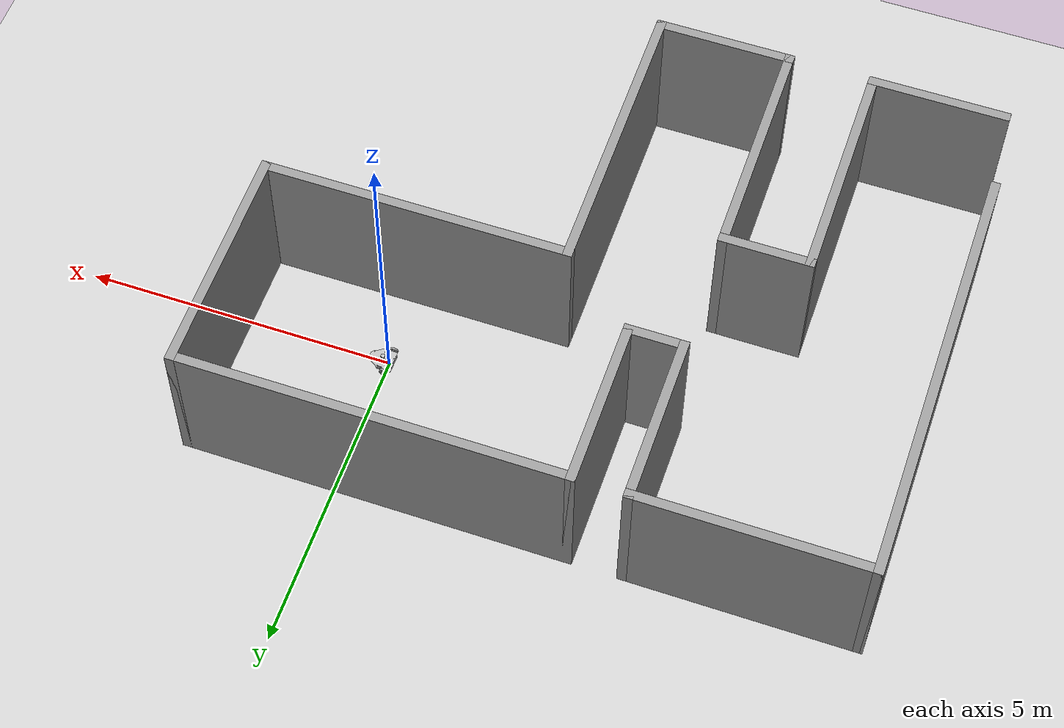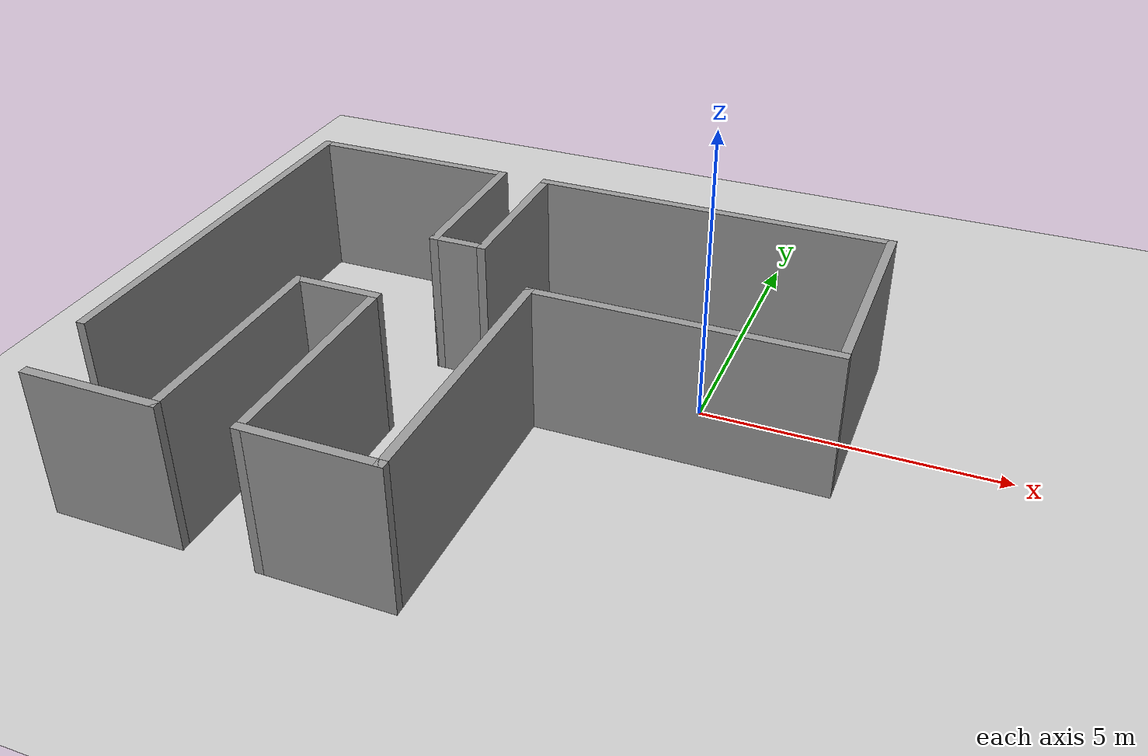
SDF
<sdf version="1.7">
 <world name="default">
  <light name="sun" type="directional">
   <pose>0 0 10 0 -0 0</pose>
   <diffuse>0.8 0.8 0.8 1</diffuse>
   <specular>0.2 0.2 0.2 1</specular>
   <attenuation>
    <range>1000</range>
    <constant>0.9</constant>
    <linear>0.01</linear>
    <quadratic>0.001</quadratic>
   </attenuation>
   <direction>-0.5 0.1 -0.9</direction>
   <spot><inner_angle>0</inner_angle><outer_angle>0</outer_angle><falloff>0</falloff></spot>
  </light>
  <model name="ground_plane">
   <static>1</static>
   <link name="link">
    <collision name="collision">
     <geometry><plane><normal>0 0 1</normal><size>100 100</size></plane></geometry>
     <surface>
      <contact><collide_bitmask>65535</collide_bitmask></contact>
      <friction><ode><mu>100</mu><mu2>50</mu2></ode></friction>
     </surface>
    </collision>
    <visual name="visual">
     <cast_shadows>0</cast_shadows>
     <geometry><plane><normal>0 0 1</normal><size>100 100</size></plane></geometry>
     <material>
      <script><uri>file://media/materials/scripts/gazebo.material</uri><name>Gazebo/Grey</name></script>
     </material>
    </visual>
   </link>
  </model>
  <gravity>0 0 -9.8</gravity>
  <magnetic_field>6e-06 2.3e-05 -4.2e-05</magnetic_field>
  <atmosphere type="adiabatic"/>
  <physics type="ode">
   <max_step_size>0.001</max_step_size>
   <real_time_factor>1</real_time_factor>
   <real_time_update_rate>1000</real_time_update_rate>
  </physics>
  <scene><ambient>0.4 0.4 0.4 1</ambient><background>0.7 0.7 0.7 1</background><shadows>1</shadows></scene>
  <spherical_coordinates>
   <surface_model>EARTH_WGS84</surface_model>
   <latitude_deg>0</latitude_deg>
   <longitude_deg>0</longitude_deg>
   <elevation>0</elevation>
   <heading_deg>0</heading_deg>
  </spherical_coordinates>
  <model name="robot">
   <link name="footprint">
    <inertial>
     <pose>-0.005167 -0.000503 0.093988 0 -0 0</pose>
     <mass>0.746894</mass>
     <inertia>
      <ixx>0.00661562</ixx>
      <ixy>-5.89426e-07</ixy>
      <ixz>-0.00028569</ixz>
      <iyy>0.00805325</iyy>
      <iyz>-1.4533e-06</iyz>
      <izz>0.0115705</izz>
     </inertia>
    </inertial>
    <collision name="footprint_fixed_joint_lump__base_link_collision">
     <pose>0 0 0.04 0 -0 0</pose>
     <geometry>
      <mesh>
       <scale>1 1 1</scale>
       <uri>/home/khiem/Desktop/khiem/src/kbot/mobile_robot_v2/meshes/base_link.STL</uri>
      </mesh>
     </geometry>
    </collision>
    <collision name="footprint_fixed_joint_lump__rp_lidar_collision_1">
     <pose>0.011811 1111 0.1922 0 -1.1238 0</pose>
     <geometry>
      <mesh>
       <scale>1 1 1</scale>
       <uri>/home/khiem/Desktop/khiem/src/kbot/mobile_robot_v2/meshes/sensors/hokuyo.dae</uri>
      </mesh>
     </geometry>
    </collision>
    <visual name="footprint_fixed_joint_lump__base_link_visual">
     <pose>0 0 0.04 0 -0 0</pose>
     <geometry>
      <mesh>
       <scale>1 1 1</scale>
       <uri>/home/khiem/Desktop/khiem/src/kbot/mobile_robot_v2/meshes/base_link.STL</uri>
      </mesh>
     </geometry>
    </visual>
    <visual name="footprint_fixed_joint_lump__rp_lidar_visual_1">
     <pose>0.011811 0 0.1922 0 -0 0</pose>
     <geometry>
      <mesh>
       <scale>1 1 1</scale>
       <uri>/home/khiem/Desktop/khiem/src/kbot/mobile_robot_v2/meshes/sensors/rp_lidar.STL</uri>
      </mesh>
     </geometry>
    </visual>
    <sensor name="head_hokuyo_sensor" type="ray">
     <visualize>1</visualize>
     <update_rate>40</update_rate>
     <ray>
      <scan>
       <horizontal>
        <samples>640</samples>
        <resolution>1</resolution>
        <min_angle>-3.14159</min_angle>
        <max_angle>3.14159</max_angle>
       </horizontal>
       <vertical><samples>1</samples><min_angle>0</min_angle><max_angle>0</max_angle></vertical>
      </scan>
      <range><min>0.3</min><max>12</max><resolution>0.01</resolution></range>
      <noise><type>gaussian</type><mean>0</mean><stddev>0.01</stddev></noise>
     </ray>
     <plugin name="gazebo_ros_head_hokuyo_controller" filename="libgazebo_ros_laser.so">
      <always_on>1</always_on>
      <update_rate>30</update_rate>
      <visualize>1</visualize>
      <topicName>khiem/i_robotlab_/scan</topicName>
      <frameName>rp_lidar</frameName>
      <robotNamespace>/</robotNamespace>
     </plugin>
     <pose>0.011811 0 0.1922 0 -0 0</pose>
    </sensor>
   </link>
   <joint name="front_caster_rotation_joint" type="revolute">
    <pose relative_to="footprint">0.184 0 0.0384 0 -0 0</pose>
    <parent>footprint</parent>
    <child>front_caster_rotation</child>
    <axis>
     <xyz>0 0 1</xyz>
     <limit><lower>-1e+16</lower><upper>1e+16</upper></limit>
     <dynamics><spring_reference>0</spring_reference><spring_stiffness>0</spring_stiffness></dynamics>
    </axis>
    <physics><ode><limit><cfm>0</cfm><erp>0.2</erp></limit></ode></physics>
   </joint>
   <link name="front_caster_rotation">
    <pose relative_to="front_caster_rotation_joint">0 0 0 0 -0 0</pose>
    <inertial>
     <pose>0.002751 -3.8e-05 -0.01069 0 -0 0</pose>
     <mass>0.00163932</mass>
     <inertia>
      <ixx>1.68947e-07</ixx>
      <ixy>-2.13476e-10</ixy>
      <ixz>3.49757e-08</ixz>
      <iyy>1.53524e-07</iyy>
      <iyz>-4.8368e-10</iyz>
      <izz>1.81641e-07</izz>
     </inertia>
    </inertial>
    <collision name="front_caster_rotation_collision">
     <geometry>
      <mesh>
       <scale>1 1 1</scale>
       <uri>/home/khiem/Desktop/khiem/src/kbot/mobile_robot_v2/meshes/front_caster_rotation.STL</uri>
      </mesh>
     </geometry>
    </collision>
    <visual name="front_caster_rotation_visual">
     <geometry>
      <mesh>
       <scale>1 1 1</scale>
       <uri>/home/khiem/Desktop/khiem/src/kbot/mobile_robot_v2/meshes/front_caster_rotation.STL</uri>
      </mesh>
     </geometry>
    </visual>
   </link>
   <joint name="front_caster_wheel_joint" type="revolute">
    <pose relative_to="front_caster_rotation">0.010096 -0.006861 -0.0244 -1.58459 -1.57079 3.14159</pose>
    <parent>front_caster_rotation</parent>
    <child>front_caster_wheel</child>
    <axis>
     <xyz>0 0 1</xyz>
     <limit><lower>-1e+16</lower><upper>1e+16</upper></limit>
     <dynamics><spring_reference>0</spring_reference><spring_stiffness>0</spring_stiffness></dynamics>
    </axis>
    <physics><ode><limit><cfm>0</cfm><erp>0.2</erp></limit></ode></physics>
   </joint>
   <link name="front_caster_wheel">
    <pose relative_to="front_caster_wheel_joint">0 0 0 0 -0 0</pose>
    <inertial>
     <pose>0 0 -0.007 0 -0 0</pose>
     <mass>0.0113625</mass>
     <inertia>
      <ixx>9.06332e-07</ixx>
      <ixy>6.67864e-23</ixy>
      <ixz>4.09392e-22</ixz>
      <iyy>9.06332e-07</iyy>
      <iyz>8.40416e-22</iyz>
      <izz>1.43202e-06</izz>
     </inertia>
    </inertial>
    <collision name="front_caster_wheel_collision">
     <geometry>
      <mesh>
       <scale>1 1 1</scale>
       <uri>/home/khiem/Desktop/khiem/src/kbot/mobile_robot_v2/meshes/front_caster_wheel.STL</uri>
      </mesh>
     </geometry>
    </collision>
    <visual name="front_caster_wheel_visual">
     <geometry>
      <mesh>
       <scale>1 1 1</scale>
       <uri>/home/khiem/Desktop/khiem/src/kbot/mobile_robot_v2/meshes/front_caster_wheel.STL</uri>
      </mesh>
     </geometry>
    </visual>
   </link>
   <joint name="rear_left_wheel_joint" type="revolute">
    <pose relative_to="footprint">-0.081026 0.22731 0.0735 0 -0 0</pose>
    <parent>footprint</parent>
    <child>rear_left_wheel</child>
    <axis>
     <xyz>0 1 0</xyz>
     <limit><lower>-1e+16</lower><upper>1e+16</upper></limit>
     <dynamics><spring_reference>0</spring_reference><spring_stiffness>0</spring_stiffness></dynamics>
    </axis>
    <physics><ode><limit><cfm>0</cfm><erp>0.2</erp></limit></ode></physics>
   </joint>
   <link name="rear_left_wheel">
    <pose relative_to="rear_left_wheel_joint">0 0 0 0 -0 0</pose>
    <inertial>
     <pose>0 -0.016398 0 0 -0 0</pose>
     <mass>0.335247</mass>
     <inertia>
      <ixx>0.000556427</ixx>
      <ixy>-9.96063e-19</ixy>
      <ixz>-1.32872e-20</ixz>
      <iyy>0.00106372</iyy>
      <iyz>-8.85953e-19</iyz>
      <izz>0.000556427</izz>
     </inertia>
    </inertial>
    <collision name="rear_left_wheel_collision">
     <geometry>
      <mesh>
       <scale>1 1 1</scale>
       <uri>/home/khiem/Desktop/khiem/src/kbot/mobile_robot_v2/meshes/rear_left_wheel.STL</uri>
      </mesh>
     </geometry>
    </collision>
    <visual name="rear_left_wheel_visual">
     <geometry>
      <mesh>
       <scale>1 1 1</scale>
       <uri>/home/khiem/Desktop/khiem/src/kbot/mobile_robot_v2/meshes/rear_left_wheel.STL</uri>
      </mesh>
     </geometry>
    </visual>
   </link>
   <joint name="rear_right_wheel_joint" type="revolute">
    <pose relative_to="footprint">-0.081026 -0.22709 0.0735 0 -0 0</pose>
    <parent>footprint</parent>
    <child>rear_right_wheel</child>
    <axis>
     <xyz>0 1 0</xyz>
     <limit><lower>-1e+16</lower><upper>1e+16</upper></limit>
     <dynamics><spring_reference>0</spring_reference><spring_stiffness>0</spring_stiffness></dynamics>
    </axis>
    <physics><ode><limit><cfm>0</cfm><erp>0.2</erp></limit></ode></physics>
   </joint>
   <link name="rear_right_wheel">
    <pose relative_to="rear_right_wheel_joint">0 0 0 0 -0 0</pose>
    <inertial>
     <pose>-0 0.015602 -0 0 -0 0</pose>
     <mass>0.335247</mass>
     <inertia>
      <ixx>0.000556427</ixx>
      <ixy>-9.22943e-19</ixy>
      <ixz>-2.69726e-20</ixz>
      <iyy>0.00106372</iyy>
      <iyz>-8.72914e-19</iyz>
      <izz>0.000556427</izz>
     </inertia>
    </inertial>
    <collision name="rear_right_wheel_collision">
     <geometry>
      <mesh>
       <scale>1 1 1</scale>
       <uri>/home/khiem/Desktop/khiem/src/kbot/mobile_robot_v2/meshes/rear_right_wheel.STL</uri>
      </mesh>
     </geometry>
    </collision>
    <visual name="rear_right_wheel_visual">
     <geometry>
      <mesh>
       <scale>1 1 1</scale>
       <uri>/home/khiem/Desktop/khiem/src/kbot/mobile_robot_v2/meshes/rear_right_wheel.STL</uri>
      </mesh>
     </geometry>
    </visual>
   </link>
   <plugin name="gazebo_ros_control" filename="libgazebo_ros_control.so">
    <robotNamespace>/</robotNamespace>
    <controlPeriod>0.001</controlPeriod>
    <legacyModeNS>0</legacyModeNS>
   </plugin>
   <static>0</static>
   <plugin name="diff_drive_controller" filename="libgazebo_ros_diff_drive.so">
    <legacyMode>0</legacyMode>
    <alwaysOn>1</alwaysOn>
    <updateRate>100.0</updateRate>
    <leftJoint>rear_left_wheel_joint</leftJoint>
    <rightJoint>rear_right_wheel_joint</rightJoint>
    <wheelSeparation>0.4</wheelSeparation>
    <wheelDiameter>0.2</wheelDiameter>
    <wheelTorque>10</wheelTorque>
    <publishTf>1</publishTf>
    <odometryFrame>map</odometryFrame>
    <commandTopic>/khiem/i_robotlab/cmd_vel</commandTopic>
    <odometryTopic>/khiem/i_robotlab/odom</odometryTopic>
    <robotBaseFrame>footprint</robotBaseFrame>
    <wheelAcceleration>2.8</wheelAcceleration>
    <publishWheelJointState>1</publishWheelJointState>
    <publishWheelTF>1</publishWheelTF>
    <odometrySource>world</odometrySource>
    <rosDebugLevel>Debug</rosDebugLevel>
    <robotNamespace>/</robotNamespace>
   </plugin>
   <pose>0.090892 0.003584 -0.000223 -0.000136 -0.010312 -0.021459</pose>
  </model>
  <model name="i_robotlab_room">
   <pose>-2.88761 -1.77987 0 0 -0 0</pose>
   <link name="Wall_0">
    <collision name="Wall_0_Collision">
     <geometry><box><size>7 0.15 2.5</size></box></geometry>
     <pose>0 0 1.25 0 -0 0</pose>
    </collision>
    <visual name="Wall_0_Visual">
     <pose>0 0 1.25 0 -0 0</pose>
     <geometry><box><size>7 0.15 2.5</size></box></geometry>
     <material>
      <script><uri>file://media/materials/scripts/gazebo.material</uri><name>Gazebo/Grey</name></script>
      <ambient>1 1 1 1</ambient>
     </material>
     <meta><layer>0</layer></meta>
    </visual>
    <pose>-5.275 0.675 0 0 -0 1.5708</pose>
   </link>
   <link name="Wall_1">
    <collision name="Wall_1_Collision">
     <geometry><box><size>3.75 0.15 2.5</size></box></geometry>
     <pose>0 0 1.25 0 -0 0</pose>
    </collision>
    <visual name="Wall_1_Visual">
     <pose>0 0 1.25 0 -0 0</pose>
     <geometry><box><size>3.75 0.15 2.5</size></box></geometry>
     <material>
      <script><uri>file://media/materials/scripts/gazebo.material</uri><name>Gazebo/Grey</name></script>
      <ambient>1 1 1 1</ambient>
     </material>
     <meta><layer>0</layer></meta>
    </visual>
    <pose>-3.475 4.1 0 0 -0 0</pose>
   </link>
   <link name="Wall_10">
    <collision name="Wall_10_Collision">
     <geometry><box><size>3.75 0.15 2.5</size></box></geometry>
     <pose>0 0 1.25 0 -0 0</pose>
    </collision>
    <visual name="Wall_10_Visual">
     <pose>0 0 1.25 0 -0 0</pose>
     <geometry><box><size>3.75 0.15 2.5</size></box></geometry>
     <material>
      <script><uri>file://media/materials/scripts/gazebo.material</uri><name>Gazebo/Grey</name></script>
      <ambient>1 1 1 1</ambient>
     </material>
     <meta><layer>0</layer></meta>
    </visual>
    <pose>-1.675 -2.3 0 0 -0 1.5708</pose>
   </link>
   <link name="Wall_11">
    <collision name="Wall_11_Collision">
     <geometry><box><size>1.5 0.15 2.5</size></box></geometry>
     <pose>0 0 1.25 0 -0 0</pose>
    </collision>
    <visual name="Wall_11_Visual">
     <pose>0 0 1.25 0 -0 0</pose>
     <geometry><box><size>1.5 0.15 2.5</size></box></geometry>
     <material>
      <script><uri>file://media/materials/scripts/gazebo.material</uri><name>Gazebo/Grey</name></script>
      <ambient>1 1 1 1</ambient>
     </material>
     <meta><layer>0</layer></meta>
    </visual>
    <pose>-2.35 -0.5 0 0 -0 3.14159</pose>
   </link>
   <link name="Wall_12">
    <collision name="Wall_12_Collision">
     <geometry><box><size>3.75 0.15 2.5</size></box></geometry>
     <pose>0 0 1.25 0 -0 0</pose>
    </collision>
    <visual name="Wall_12_Visual">
     <pose>0 0 1.25 0 -0 0</pose>
     <geometry><box><size>3.75 0.15 2.5</size></box></geometry>
     <material>
      <script><uri>file://media/materials/scripts/gazebo.material</uri><name>Gazebo/Grey</name></script>
      <ambient>1 1 1 1</ambient>
     </material>
     <meta><layer>0</layer></meta>
    </visual>
    <pose>-3.025 -2.3 0 0 -0 -1.5708</pose>
   </link>
   <link name="Wall_13">
    <collision name="Wall_13_Collision">
     <geometry><box><size>2.25 0.15 2.5</size></box></geometry>
     <pose>0 0 1.25 0 -0 0</pose>
    </collision>
    <visual name="Wall_13_Visual">
     <pose>0 0 1.25 0 -0 0</pose>
     <geometry><box><size>2.25 0.15 2.5</size></box></geometry>
     <material>
      <script><uri>file://media/materials/scripts/gazebo.material</uri><name>Gazebo/Grey</name></script>
      <ambient>1 1 1 1</ambient>
     </material>
     <meta><layer>0</layer></meta>
    </visual>
    <pose>-4.075 -4.1 0 0 -0 3.14159</pose>
   </link>
   <link name="Wall_2">
    <collision name="Wall_2_Collision">
     <geometry><box><size>2.75 0.15 2.5</size></box></geometry>
     <pose>0 0 1.25 0 -0 0</pose>
    </collision>
    <visual name="Wall_2_Visual">
     <pose>0 0 1.25 0 -0 0</pose>
     <geometry><box><size>2.75 0.15 2.5</size></box></geometry>
     <material>
      <script><uri>file://media/materials/scripts/gazebo.material</uri><name>Gazebo/Grey</name></script>
      <ambient>1 1 1 1</ambient>
     </material>
     <meta><layer>0</layer></meta>
    </visual>
    <pose>-1.675 2.8 0 0 -0 -1.5708</pose>
   </link>
   <link name="Wall_3">
    <collision name="Wall_3_Collision">
     <geometry><box><size>1 0.15 2.5</size></box></geometry>
     <pose>0 0 1.25 0 -0 0</pose>
    </collision>
    <visual name="Wall_3_Visual">
     <pose>0 0 1.25 0 -0 0</pose>
     <geometry><box><size>1 0.15 2.5</size></box></geometry>
     <material>
      <script><uri>file://media/materials/scripts/gazebo.material</uri><name>Gazebo/Grey</name></script>
      <ambient>1 1 1 1</ambient>
     </material>
     <meta><layer>0</layer></meta>
    </visual>
    <pose>-1.25 1.5 0 0 -0 0</pose>
   </link>
   <link name="Wall_4">
    <collision name="Wall_4_Collision">
     <geometry><box><size>2.75 0.15 2.5</size></box></geometry>
     <pose>0 0 1.25 0 -0 0</pose>
    </collision>
    <visual name="Wall_4_Visual">
     <pose>0 0 1.25 0 -0 0</pose>
     <geometry><box><size>2.75 0.15 2.5</size></box></geometry>
     <material>
      <script><uri>file://media/materials/scripts/gazebo.material</uri><name>Gazebo/Grey</name></script>
      <ambient>1 1 1 1</ambient>
     </material>
     <meta><layer>0</layer></meta>
    </visual>
    <pose>-0.825 2.8 0 0 -0 1.5708</pose>
   </link>
   <link name="Wall_5">
    <collision name="Wall_5_Collision">
     <geometry><box><size>6.25 0.15 2.5</size></box></geometry>
     <pose>0 0 1.25 0 -0 0</pose>
    </collision>
    <visual name="Wall_5_Visual">
     <pose>0 0 1.25 0 -0 0</pose>
     <geometry><box><size>6.25 0.15 2.5</size></box></geometry>
     <material>
      <script><uri>file://media/materials/scripts/gazebo.material</uri><name>Gazebo/Grey</name></script>
      <ambient>1 1 1 1</ambient>
     </material>
     <meta><layer>0</layer></meta>
    </visual>
    <pose>2.225 4.1 0 0 -0 0</pose>
   </link>
   <link name="Wall_6">
    <collision name="Wall_6_Collision">
     <geometry><box><size>3.75 0.15 2.5</size></box></geometry>
     <pose>0 0 1.25 0 -0 0</pose>
    </collision>
    <visual name="Wall_6_Visual">
     <pose>0 0 1.25 0 -0 0</pose>
     <geometry><box><size>3.75 0.15 2.5</size></box></geometry>
     <material>
      <script><uri>file://media/materials/scripts/gazebo.material</uri><name>Gazebo/Grey</name></script>
      <ambient>1 1 1 1</ambient>
     </material>
     <meta><layer>0</layer></meta>
    </visual>
    <pose>5.275 2.3 0 0 -0 -1.5708</pose>
   </link>
   <link name="Wall_7">
    <collision name="Wall_7_Collision">
     <geometry><box><size>5 0.15 2.5</size></box></geometry>
     <pose>0 0 1.25 0 -0 0</pose>
    </collision>
    <visual name="Wall_7_Visual">
     <pose>0 0 1.25 0 -0 0</pose>
     <geometry><box><size>5 0.15 2.5</size></box></geometry>
     <material>
      <script><uri>file://media/materials/scripts/gazebo.material</uri><name>Gazebo/Grey</name></script>
      <ambient>1 1 1 1</ambient>
     </material>
     <meta><layer>0</layer></meta>
    </visual>
    <pose>2.85 0.5 0 0 -0 3.14159</pose>
   </link>
   <link name="Wall_8">
    <collision name="Wall_8_Collision">
     <geometry><box><size>4.75 0.15 2.5</size></box></geometry>
     <pose>0 0 1.25 0 -0 0</pose>
    </collision>
    <visual name="Wall_8_Visual">
     <pose>0 0 1.25 0 -0 0</pose>
     <geometry><box><size>4.75 0.15 2.5</size></box></geometry>
     <material>
      <script><uri>file://media/materials/scripts/gazebo.material</uri><name>Gazebo/Grey</name></script>
      <ambient>1 1 1 1</ambient>
     </material>
     <meta><layer>0</layer></meta>
    </visual>
    <pose>0.425 -1.8 0 0 -0 -1.5708</pose>
   </link>
   <link name="Wall_9">
    <collision name="Wall_9_Collision">
     <geometry><box><size>2.25 0.15 2.5</size></box></geometry>
     <pose>0 0 1.25 0 -0 0</pose>
    </collision>
    <visual name="Wall_9_Visual">
     <pose>0 0 1.25 0 -0 0</pose>
     <geometry><box><size>2.25 0.15 2.5</size></box></geometry>
     <material>
      <script><uri>file://media/materials/scripts/gazebo.material</uri><name>Gazebo/Grey</name></script>
      <ambient>1 1 1 1</ambient>
     </material>
     <meta><layer>0</layer></meta>
    </visual>
    <pose>-0.625 -4.1 0 0 -0 3.14159</pose>
   </link>
   <static>1</static>
  </model>
 </world>
</sdf>
